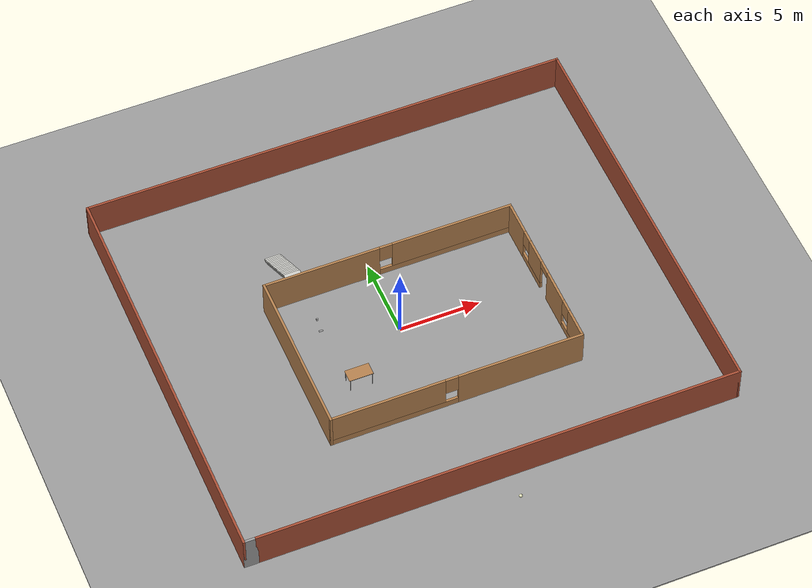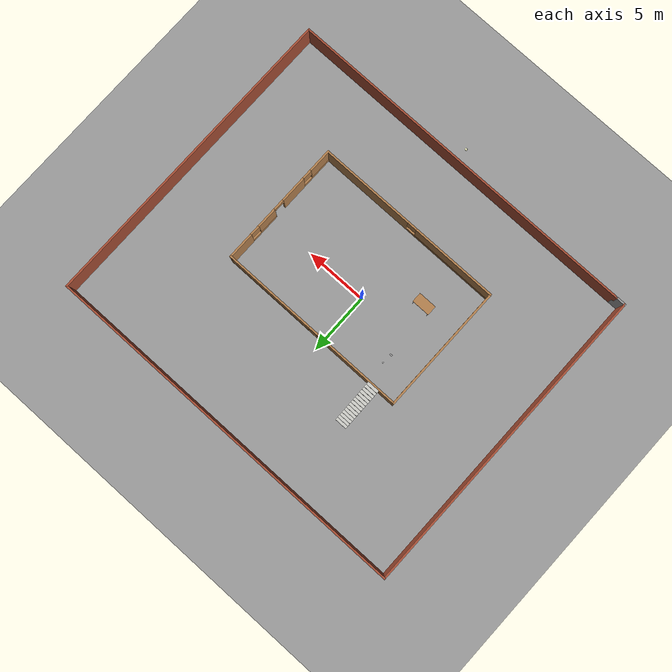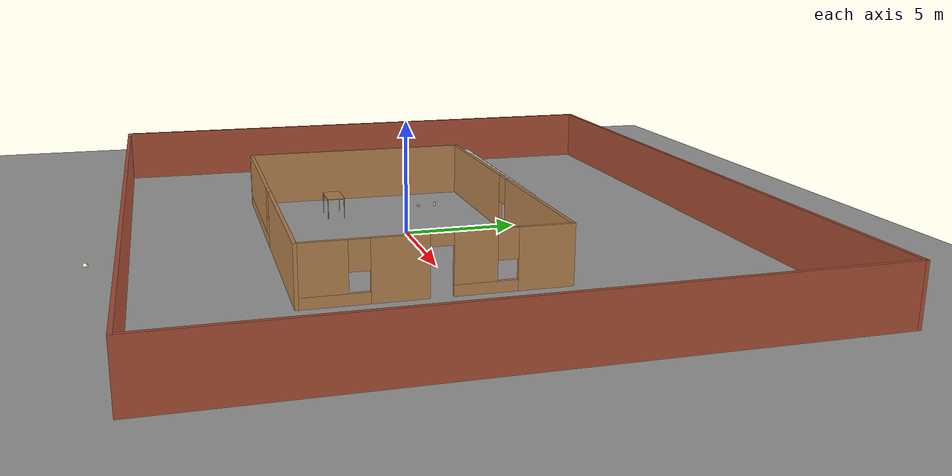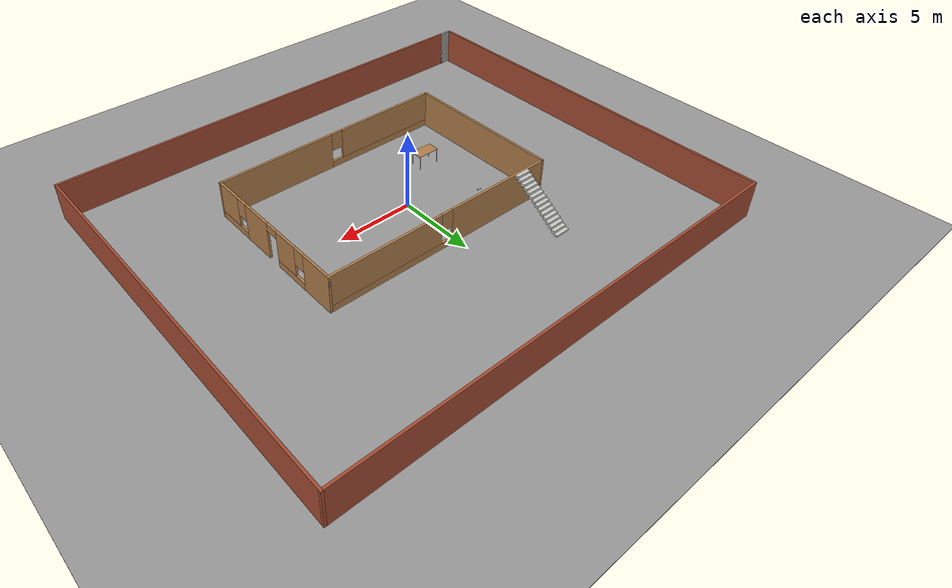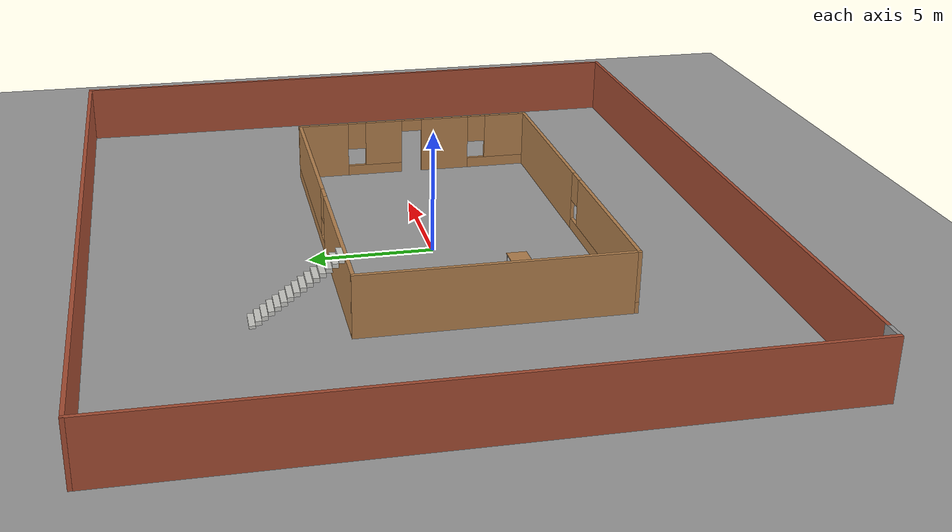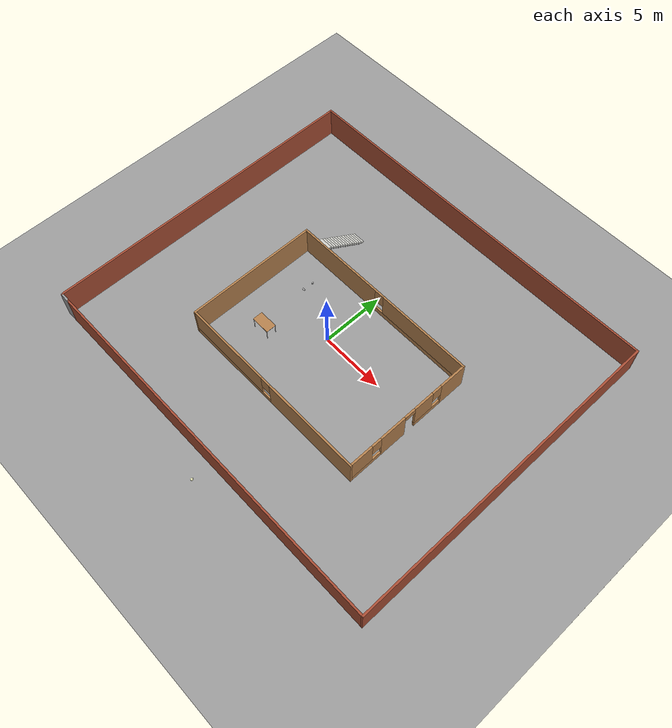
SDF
<sdf version="1.6">
 <world name="default">
  <light name="sun" type="directional">
   <pose>0 0 10 0 -0 0</pose>
   <diffuse>0.8 0.8 0.8 1</diffuse>
   <specular>0.2 0.2 0.2 1</specular>
   <attenuation>
    <range>1000</range>
    <constant>0.9</constant>
    <linear>0.01</linear>
    <quadratic>0.001</quadratic>
   </attenuation>
   <direction>-0.5 0.1 -0.9</direction>
   <spot><inner_angle>0</inner_angle><outer_angle>0</outer_angle><falloff>0</falloff></spot>
  </light>
  <model name="ground_plane">
   <static>1</static>
   <link name="link">
    <collision name="collision">
     <geometry><plane><normal>0 0 1</normal><size>100 100</size></plane></geometry>
     <surface>
      <contact><collide_bitmask>65535</collide_bitmask></contact>
      <friction><ode><mu>100</mu><mu2>50</mu2></ode></friction>
     </surface>
    </collision>
    <visual name="visual">
     <cast_shadows>0</cast_shadows>
     <geometry><plane><normal>0 0 1</normal><size>100 100</size></plane></geometry>
     <material>
      <script><uri>file://media/materials/scripts/gazebo.material</uri><name>Gazebo/Grey</name></script>
     </material>
    </visual>
   </link>
  </model>
  <gravity>0 0 -9.8</gravity>
  <magnetic_field>6e-06 2.3e-05 -4.2e-05</magnetic_field>
  <atmosphere type="adiabatic"/>
  <physics name="default_physics" default="0" type="ode">
   <max_step_size>0.001</max_step_size>
   <real_time_factor>1</real_time_factor>
   <real_time_update_rate>1000</real_time_update_rate>
  </physics>
  <scene><ambient>0.4 0.4 0.4 1</ambient><background>0.7 0.7 0.7 1</background><shadows>1</shadows></scene>
  <spherical_coordinates>
   <surface_model>EARTH_WGS84</surface_model>
   <latitude_deg>0</latitude_deg>
   <longitude_deg>0</longitude_deg>
   <elevation>0</elevation>
   <heading_deg>0</heading_deg>
  </spherical_coordinates>
  <model name="world">
   <pose>0.846493 0.830095 0 0 -0 0</pose>
   <link name="Stairs_1">
    <visual name="Stairs_1_Visual_0">
     <pose>-5.80593 6.84533 0.083333 0 -0 0</pose>
     <geometry><box><size>1 0.233333 0.166667</size></box></geometry>
     <material>
      <script><uri>file://media/materials/scripts/gazebo.material</uri><name>Gazebo/CeilingTiled</name></script>
      <ambient>1 1 1 1</ambient>
     </material>
     <meta><layer>0</layer></meta>
    </visual>
    <collision name="Stairs_1_Collision_0">
     <geometry><box><size>1 0.233333 0.166667</size></box></geometry>
     <pose>-5.80593 6.84533 0.083333 0 -0 0</pose>
    </collision>
    <visual name="Stairs_1_Visual_1">
     <pose>-5.80593 6.612 0.25 0 -0 0</pose>
     <geometry><box><size>1 0.233333 0.166667</size></box></geometry>
     <material>
      <script><uri>file://media/materials/scripts/gazebo.material</uri><name>Gazebo/CeilingTiled</name></script>
      <ambient>1 1 1 1</ambient>
     </material>
     <meta><layer>0</layer></meta>
    </visual>
    <collision name="Stairs_1_Collision_1">
     <geometry><box><size>1 0.233333 0.166667</size></box></geometry>
     <pose>-5.80593 6.612 0.25 0 -0 0</pose>
    </collision>
    <visual name="Stairs_1_Visual_2">
     <pose>-5.80593 6.37866 0.416667 0 -0 0</pose>
     <geometry><box><size>1 0.233333 0.166667</size></box></geometry>
     <material>
      <script><uri>file://media/materials/scripts/gazebo.material</uri><name>Gazebo/CeilingTiled</name></script>
      <ambient>1 1 1 1</ambient>
     </material>
     <meta><layer>0</layer></meta>
    </visual>
    <collision name="Stairs_1_Collision_2">
     <geometry><box><size>1 0.233333 0.166667</size></box></geometry>
     <pose>-5.80593 6.37866 0.416667 0 -0 0</pose>
    </collision>
    <visual name="Stairs_1_Visual_3">
     <pose>-5.80593 6.14533 0.583333 0 -0 0</pose>
     <geometry><box><size>1 0.233333 0.166667</size></box></geometry>
     <material>
      <script><uri>file://media/materials/scripts/gazebo.material</uri><name>Gazebo/CeilingTiled</name></script>
      <ambient>1 1 1 1</ambient>
     </material>
     <meta><layer>0</layer></meta>
    </visual>
    <collision name="Stairs_1_Collision_3">
     <geometry><box><size>1 0.233333 0.166667</size></box></geometry>
     <pose>-5.80593 6.14533 0.583333 0 -0 0</pose>
    </collision>
    <visual name="Stairs_1_Visual_4">
     <pose>-5.80593 5.912 0.75 0 -0 0</pose>
     <geometry><box><size>1 0.233333 0.166667</size></box></geometry>
     <material>
      <script><uri>file://media/materials/scripts/gazebo.material</uri><name>Gazebo/CeilingTiled</name></script>
      <ambient>1 1 1 1</ambient>
     </material>
     <meta><layer>0</layer></meta>
    </visual>
    <collision name="Stairs_1_Collision_4">
     <geometry><box><size>1 0.233333 0.166667</size></box></geometry>
     <pose>-5.80593 5.912 0.75 0 -0 0</pose>
    </collision>
    <visual name="Stairs_1_Visual_5">
     <pose>-5.80593 5.67866 0.916667 0 -0 0</pose>
     <geometry><box><size>1 0.233333 0.166667</size></box></geometry>
     <material>
      <script><uri>file://media/materials/scripts/gazebo.material</uri><name>Gazebo/CeilingTiled</name></script>
      <ambient>1 1 1 1</ambient>
     </material>
     <meta><layer>0</layer></meta>
    </visual>
    <collision name="Stairs_1_Collision_5">
     <geometry><box><size>1 0.233333 0.166667</size></box></geometry>
     <pose>-5.80593 5.67866 0.916667 0 -0 0</pose>
    </collision>
    <visual name="Stairs_1_Visual_6">
     <pose>-5.80593 5.44533 1.08333 0 -0 0</pose>
     <geometry><box><size>1 0.233333 0.166667</size></box></geometry>
     <material>
      <script><uri>file://media/materials/scripts/gazebo.material</uri><name>Gazebo/CeilingTiled</name></script>
      <ambient>1 1 1 1</ambient>
     </material>
     <meta><layer>0</layer></meta>
    </visual>
    <collision name="Stairs_1_Collision_6">
     <geometry><box><size>1 0.233333 0.166667</size></box></geometry>
     <pose>-5.80593 5.44533 1.08333 0 -0 0</pose>
    </collision>
    <visual name="Stairs_1_Visual_7">
     <pose>-5.80593 5.212 1.25 0 -0 0</pose>
     <geometry><box><size>1 0.233333 0.166667</size></box></geometry>
     <material>
      <script><uri>file://media/materials/scripts/gazebo.material</uri><name>Gazebo/CeilingTiled</name></script>
      <ambient>1 1 1 1</ambient>
     </material>
     <meta><layer>0</layer></meta>
    </visual>
    <collision name="Stairs_1_Collision_7">
     <geometry><box><size>1 0.233333 0.166667</size></box></geometry>
     <pose>-5.80593 5.212 1.25 0 -0 0</pose>
    </collision>
    <visual name="Stairs_1_Visual_8">
     <pose>-5.80593 4.97866 1.41667 0 -0 0</pose>
     <geometry><box><size>1 0.233333 0.166667</size></box></geometry>
     <material>
      <script><uri>file://media/materials/scripts/gazebo.material</uri><name>Gazebo/CeilingTiled</name></script>
      <ambient>1 1 1 1</ambient>
     </material>
     <meta><layer>0</layer></meta>
    </visual>
    <collision name="Stairs_1_Collision_8">
     <geometry><box><size>1 0.233333 0.166667</size></box></geometry>
     <pose>-5.80593 4.97866 1.41667 0 -0 0</pose>
    </collision>
    <visual name="Stairs_1_Visual_9">
     <pose>-5.80593 4.74533 1.58333 0 -0 0</pose>
     <geometry><box><size>1 0.233333 0.166667</size></box></geometry>
     <material>
      <script><uri>file://media/materials/scripts/gazebo.material</uri><name>Gazebo/CeilingTiled</name></script>
      <ambient>1 1 1 1</ambient>
     </material>
     <meta><layer>0</layer></meta>
    </visual>
    <collision name="Stairs_1_Collision_9">
     <geometry><box><size>1 0.233333 0.166667</size></box></geometry>
     <pose>-5.80593 4.74533 1.58333 0 -0 0</pose>
    </collision>
    <visual name="Stairs_1_Visual_10">
     <pose>-5.80593 4.512 1.75 0 -0 0</pose>
     <geometry><box><size>1 0.233333 0.166667</size></box></geometry>
     <material>
      <script><uri>file://media/materials/scripts/gazebo.material</uri><name>Gazebo/CeilingTiled</name></script>
      <ambient>1 1 1 1</ambient>
     </material>
     <meta><layer>0</layer></meta>
    </visual>
    <collision name="Stairs_1_Collision_10">
     <geometry><box><size>1 0.233333 0.166667</size></box></geometry>
     <pose>-5.80593 4.512 1.75 0 -0 0</pose>
    </collision>
    <visual name="Stairs_1_Visual_11">
     <pose>-5.80593 4.27866 1.91667 0 -0 0</pose>
     <geometry><box><size>1 0.233333 0.166667</size></box></geometry>
     <material>
      <script><uri>file://media/materials/scripts/gazebo.material</uri><name>Gazebo/CeilingTiled</name></script>
      <ambient>1 1 1 1</ambient>
     </material>
     <meta><layer>0</layer></meta>
    </visual>
    <collision name="Stairs_1_Collision_11">
     <geometry><box><size>1 0.233333 0.166667</size></box></geometry>
     <pose>-5.80593 4.27866 1.91667 0 -0 0</pose>
    </collision>
    <visual name="Stairs_1_Visual_12">
     <pose>-5.80593 4.04533 2.08333 0 -0 0</pose>
     <geometry><box><size>1 0.233333 0.166667</size></box></geometry>
     <material>
      <script><uri>file://media/materials/scripts/gazebo.material</uri><name>Gazebo/CeilingTiled</name></script>
      <ambient>1 1 1 1</ambient>
     </material>
     <meta><layer>0</layer></meta>
    </visual>
    <collision name="Stairs_1_Collision_12">
     <geometry><box><size>1 0.233333 0.166667</size></box></geometry>
     <pose>-5.80593 4.04533 2.08333 0 -0 0</pose>
    </collision>
    <visual name="Stairs_1_Visual_13">
     <pose>-5.80593 3.812 2.25 0 -0 0</pose>
     <geometry><box><size>1 0.233333 0.166667</size></box></geometry>
     <material>
      <script><uri>file://media/materials/scripts/gazebo.material</uri><name>Gazebo/CeilingTiled</name></script>
      <ambient>1 1 1 1</ambient>
     </material>
     <meta><layer>0</layer></meta>
    </visual>
    <collision name="Stairs_1_Collision_13">
     <geometry><box><size>1 0.233333 0.166667</size></box></geometry>
     <pose>-5.80593 3.812 2.25 0 -0 0</pose>
    </collision>
    <visual name="Stairs_1_Visual_14">
     <pose>-5.80593 3.57866 2.41667 0 -0 0</pose>
     <geometry><box><size>1 0.233333 0.166667</size></box></geometry>
     <material>
      <script><uri>file://media/materials/scripts/gazebo.material</uri><name>Gazebo/CeilingTiled</name></script>
      <ambient>1 1 1 1</ambient>
     </material>
     <meta><layer>0</layer></meta>
    </visual>
    <collision name="Stairs_1_Collision_14">
     <geometry><box><size>1 0.233333 0.166667</size></box></geometry>
     <pose>-5.80593 3.57866 2.41667 0 -0 0</pose>
    </collision>
   </link>
   <link name="Wall_0">
    <collision name="Wall_0_Collision">
     <geometry><box><size>29.75 0.15 2.5</size></box></geometry>
     <pose>0 0 1.25 0 -0 0</pose>
    </collision>
    <visual name="Wall_0_Visual">
     <pose>0 0 1.25 0 -0 0</pose>
     <geometry><box><size>29.75 0.15 2.5</size></box></geometry>
     <material>
      <script><uri>file://media/materials/scripts/gazebo.material</uri><name>Gazebo/Bricks</name></script>
      <ambient>1 1 1 1</ambient>
     </material>
     <meta><layer>0</layer></meta>
    </visual>
    <pose>0.375 -12.8 0 0 -0 0</pose>
   </link>
   <link name="Wall_1">
    <collision name="Wall_1_Collision">
     <geometry><box><size>25.75 0.15 2.5</size></box></geometry>
     <pose>0 0 1.25 0 -0 0</pose>
    </collision>
    <visual name="Wall_1_Visual">
     <pose>0 0 1.25 0 -0 0</pose>
     <geometry><box><size>25.75 0.15 2.5</size></box></geometry>
     <material>
      <script><uri>file://media/materials/scripts/gazebo.material</uri><name>Gazebo/Bricks</name></script>
      <ambient>1 1 1 1</ambient>
     </material>
     <meta><layer>0</layer></meta>
    </visual>
    <pose>15.175 0 0 0 -0 1.5708</pose>
   </link>
   <link name="Wall_2">
    <collision name="Wall_2_Collision">
     <geometry><box><size>30.5 0.15 2.5</size></box></geometry>
     <pose>0 0 1.25 0 -0 0</pose>
    </collision>
    <visual name="Wall_2_Visual">
     <pose>0 0 1.25 0 -0 0</pose>
     <geometry><box><size>30.5 0.15 2.5</size></box></geometry>
     <material>
      <script><uri>file://media/materials/scripts/gazebo.material</uri><name>Gazebo/Bricks</name></script>
      <ambient>1 1 1 1</ambient>
     </material>
     <meta><layer>0</layer></meta>
    </visual>
    <pose>-0 12.8 0 0 -0 3.14159</pose>
   </link>
   <link name="Wall_3">
    <collision name="Wall_3_Collision">
     <geometry><box><size>25.75 0.15 2.5</size></box></geometry>
     <pose>0 0 1.25 0 -0 0</pose>
    </collision>
    <visual name="Wall_3_Visual">
     <pose>0 0 1.25 0 -0 0</pose>
     <geometry><box><size>25.75 0.15 2.5</size></box></geometry>
     <material>
      <script><uri>file://media/materials/scripts/gazebo.material</uri><name>Gazebo/Bricks</name></script>
      <ambient>1 1 1 1</ambient>
     </material>
     <meta><layer>0</layer></meta>
    </visual>
    <pose>-15.175 0 0 0 -0 -1.5708</pose>
   </link>
   <link name="Wall_4">
    <collision name="Wall_4_Collision">
     <geometry><box><size>0.9 0.15 2.5</size></box></geometry>
     <pose>0 0 1.25 0 -0 0</pose>
    </collision>
    <visual name="Wall_4_Visual">
     <pose>0 0 1.25 0 -0 0</pose>
     <geometry><box><size>0.9 0.15 2.5</size></box></geometry>
     <material>
      <script><uri>file://media/materials/scripts/gazebo.material</uri><name>Gazebo/Grey</name></script>
      <ambient>1 1 1 1</ambient>
     </material>
     <meta><layer>0</layer></meta>
    </visual>
    <pose>-14.8 -12.8 0 0 -0 0</pose>
   </link>
   <link name="Wall_40">
    <pose>0.159381 3.40601 0 0 -0 0</pose>
    <visual name="Wall_40_Visual_0">
     <pose>-4.21798 0 1.25 0 -0 0</pose>
     <geometry><box><size>7.31404 0.15 2.5</size></box></geometry>
     <material>
      <script><uri>file://media/materials/scripts/gazebo.material</uri><name>Gazebo/Wood</name></script>
      <ambient>1 1 1 1</ambient>
     </material>
     <meta><layer>0</layer></meta>
    </visual>
    <collision name="Wall_40_Collision_0">
     <geometry><box><size>7.31404 0.15 2.5</size></box></geometry>
     <pose>-4.21798 0 1.25 0 -0 0</pose>
    </collision>
    <visual name="Wall_40_Visual_1">
     <pose>3.65702 0 0.25 0 -0 0</pose>
     <geometry><box><size>8.43596 0.15 0.5</size></box></geometry>
     <material>
      <script><uri>file://media/materials/scripts/gazebo.material</uri><name>Gazebo/Wood</name></script>
      <ambient>1 1 1 1</ambient>
     </material>
     <meta><layer>0</layer></meta>
    </visual>
    <collision name="Wall_40_Collision_1">
     <geometry><box><size>8.43596 0.15 0.5</size></box></geometry>
     <pose>3.65702 0 0.25 0 -0 0</pose>
    </collision>
    <visual name="Wall_40_Visual_2">
     <pose>4.05702 0 1.5 0 -0 0</pose>
     <geometry><box><size>7.63596 0.15 2</size></box></geometry>
     <material>
      <script><uri>file://media/materials/scripts/gazebo.material</uri><name>Gazebo/Wood</name></script>
      <ambient>1 1 1 1</ambient>
     </material>
     <meta><layer>0</layer></meta>
    </visual>
    <collision name="Wall_40_Collision_2">
     <geometry><box><size>7.63596 0.15 2</size></box></geometry>
     <pose>4.05702 0 1.5 0 -0 0</pose>
    </collision>
    <visual name="Wall_40_Visual_3">
     <pose>-0.160962 0 1.9 0 -0 0</pose>
     <geometry><box><size>0.8 0.15 1.2</size></box></geometry>
     <material>
      <script><uri>file://media/materials/scripts/gazebo.material</uri><name>Gazebo/Wood</name></script>
      <ambient>1 1 1 1</ambient>
     </material>
     <meta><layer>0</layer></meta>
    </visual>
    <collision name="Wall_40_Collision_3">
     <geometry><box><size>0.8 0.15 1.2</size></box></geometry>
     <pose>-0.160962 0 1.9 0 -0 0</pose>
    </collision>
   </link>
   <link name="Wall_42">
    <pose>7.95938 -1.76899 0 0 -0 -1.5708</pose>
    <visual name="Wall_42_Visual_0">
     <pose>-4.14193 0 1.25 0 -0 0</pose>
     <geometry><box><size>2.21614 0.15 2.5</size></box></geometry>
     <material>
      <script><uri>file://media/materials/scripts/gazebo.material</uri><name>Gazebo/Wood</name></script>
      <ambient>1 1 1 1</ambient>
     </material>
     <meta><layer>0</layer></meta>
    </visual>
    <collision name="Wall_42_Collision_0">
     <geometry><box><size>2.21614 0.15 2.5</size></box></geometry>
     <pose>-4.14193 0 1.25 0 -0 0</pose>
    </collision>
    <visual name="Wall_42_Visual_1">
     <pose>1.41827 0 1.25 0 -0 0</pose>
     <geometry><box><size>2.17035 0.15 2.5</size></box></geometry>
     <material>
      <script><uri>file://media/materials/scripts/gazebo.material</uri><name>Gazebo/Wood</name></script>
      <ambient>1 1 1 1</ambient>
     </material>
     <meta><layer>0</layer></meta>
    </visual>
    <collision name="Wall_42_Collision_1">
     <geometry><box><size>2.17035 0.15 2.5</size></box></geometry>
     <pose>1.41827 0 1.25 0 -0 0</pose>
    </collision>
    <visual name="Wall_42_Visual_2">
     <pose>-1.80038 0 0.25 0 -0 0</pose>
     <geometry><box><size>2.46696 0.15 0.5</size></box></geometry>
     <material>
      <script><uri>file://media/materials/scripts/gazebo.material</uri><name>Gazebo/Wood</name></script>
      <ambient>1 1 1 1</ambient>
     </material>
     <meta><layer>0</layer></meta>
    </visual>
    <collision name="Wall_42_Collision_2">
     <geometry><box><size>2.46696 0.15 0.5</size></box></geometry>
     <pose>-1.80038 0 0.25 0 -0 0</pose>
    </collision>
    <visual name="Wall_42_Visual_3">
     <pose>3.87672 0 0.25 0 -0 0</pose>
     <geometry><box><size>2.74656 0.15 0.5</size></box></geometry>
     <material>
      <script><uri>file://media/materials/scripts/gazebo.material</uri><name>Gazebo/Wood</name></script>
      <ambient>1 1 1 1</ambient>
     </material>
     <meta><layer>0</layer></meta>
    </visual>
    <collision name="Wall_42_Collision_3">
     <geometry><box><size>2.74656 0.15 0.5</size></box></geometry>
     <pose>3.87672 0 0.25 0 -0 0</pose>
    </collision>
    <visual name="Wall_42_Visual_4">
     <pose>-1.40038 0 1.5 0 -0 0</pose>
     <geometry><box><size>1.66696 0.15 2</size></box></geometry>
     <material>
      <script><uri>file://media/materials/scripts/gazebo.material</uri><name>Gazebo/Wood</name></script>
      <ambient>1 1 1 1</ambient>
     </material>
     <meta><layer>0</layer></meta>
    </visual>
    <collision name="Wall_42_Collision_4">
     <geometry><box><size>1.66696 0.15 2</size></box></geometry>
     <pose>-1.40038 0 1.5 0 -0 0</pose>
    </collision>
    <visual name="Wall_42_Visual_5">
     <pose>-1.40038 0 1.5 0 -0 0</pose>
     <geometry><box><size>1.66696 0.15 2</size></box></geometry>
     <material>
      <script><uri>file://media/materials/scripts/gazebo.material</uri><name>Gazebo/Wood</name></script>
      <ambient>1 1 1 1</ambient>
     </material>
     <meta><layer>0</layer></meta>
    </visual>
    <collision name="Wall_42_Collision_5">
     <geometry><box><size>1.66696 0.15 2</size></box></geometry>
     <pose>-1.40038 0 1.5 0 -0 0</pose>
    </collision>
    <visual name="Wall_42_Visual_6">
     <pose>4.27672 0 1.5 0 -0 0</pose>
     <geometry><box><size>1.94656 0.15 2</size></box></geometry>
     <material>
      <script><uri>file://media/materials/scripts/gazebo.material</uri><name>Gazebo/Wood</name></script>
      <ambient>1 1 1 1</ambient>
     </material>
     <meta><layer>0</layer></meta>
    </visual>
    <collision name="Wall_42_Collision_6">
     <geometry><box><size>1.94656 0.15 2</size></box></geometry>
     <pose>4.27672 0 1.5 0 -0 0</pose>
    </collision>
    <visual name="Wall_42_Visual_7">
     <pose>-2.63386 0 1.9 0 -0 0</pose>
     <geometry><box><size>0.8 0.15 1.2</size></box></geometry>
     <material>
      <script><uri>file://media/materials/scripts/gazebo.material</uri><name>Gazebo/Wood</name></script>
      <ambient>1 1 1 1</ambient>
     </material>
     <meta><layer>0</layer></meta>
    </visual>
    <collision name="Wall_42_Collision_7">
     <geometry><box><size>0.8 0.15 1.2</size></box></geometry>
     <pose>-2.63386 0 1.9 0 -0 0</pose>
    </collision>
    <visual name="Wall_42_Visual_8">
     <pose>2.90344 0 1.9 0 -0 0</pose>
     <geometry><box><size>0.8 0.15 1.2</size></box></geometry>
     <material>
      <script><uri>file://media/materials/scripts/gazebo.material</uri><name>Gazebo/Wood</name></script>
      <ambient>1 1 1 1</ambient>
     </material>
     <meta><layer>0</layer></meta>
    </visual>
    <collision name="Wall_42_Collision_8">
     <geometry><box><size>0.8 0.15 1.2</size></box></geometry>
     <pose>2.90344 0 1.9 0 -0 0</pose>
    </collision>
    <visual name="Wall_42_Visual_9">
     <pose>-0.116906 0 2.25 0 -0 0</pose>
     <geometry><box><size>0.9 0.15 0.5</size></box></geometry>
     <material>
      <script><uri>file://media/materials/scripts/gazebo.material</uri><name>Gazebo/Wood</name></script>
      <ambient>1 1 1 1</ambient>
     </material>
     <meta><layer>0</layer></meta>
    </visual>
    <collision name="Wall_42_Collision_9">
     <geometry><box><size>0.9 0.15 0.5</size></box></geometry>
     <pose>-0.116906 0 2.25 0 -0 0</pose>
    </collision>
    <visual name="Wall_42_Visual_10">
     <pose>-0.116906 0 2.25 0 -0 0</pose>
     <geometry><box><size>0.9 0.15 0.5</size></box></geometry>
     <material>
      <script><uri>file://media/materials/scripts/gazebo.material</uri><name>Gazebo/Wood</name></script>
      <ambient>1 1 1 1</ambient>
     </material>
     <meta><layer>0</layer></meta>
    </visual>
    <collision name="Wall_42_Collision_10">
     <geometry><box><size>0.9 0.15 0.5</size></box></geometry>
     <pose>-0.116906 0 2.25 0 -0 0</pose>
    </collision>
   </link>
   <link name="Wall_43">
    <pose>0.159381 -6.94399 0 0 -0 3.14159</pose>
    <visual name="Wall_43_Visual_0">
     <pose>-3.95919 0 1.25 0 -0 0</pose>
     <geometry><box><size>7.83162 0.15 2.5</size></box></geometry>
     <material>
      <script><uri>file://media/materials/scripts/gazebo.material</uri><name>Gazebo/Wood</name></script>
      <ambient>1 1 1 1</ambient>
     </material>
     <meta><layer>0</layer></meta>
    </visual>
    <collision name="Wall_43_Collision_0">
     <geometry><box><size>7.83162 0.15 2.5</size></box></geometry>
     <pose>-3.95919 0 1.25 0 -0 0</pose>
    </collision>
    <visual name="Wall_43_Visual_1">
     <pose>3.91581 0 0.25 0 -0 0</pose>
     <geometry><box><size>7.91838 0.15 0.5</size></box></geometry>
     <material>
      <script><uri>file://media/materials/scripts/gazebo.material</uri><name>Gazebo/Wood</name></script>
      <ambient>1 1 1 1</ambient>
     </material>
     <meta><layer>0</layer></meta>
    </visual>
    <collision name="Wall_43_Collision_1">
     <geometry><box><size>7.91838 0.15 0.5</size></box></geometry>
     <pose>3.91581 0 0.25 0 -0 0</pose>
    </collision>
    <visual name="Wall_43_Visual_2">
     <pose>4.31581 0 1.5 0 -0 0</pose>
     <geometry><box><size>7.11838 0.15 2</size></box></geometry>
     <material>
      <script><uri>file://media/materials/scripts/gazebo.material</uri><name>Gazebo/Wood</name></script>
      <ambient>1 1 1 1</ambient>
     </material>
     <meta><layer>0</layer></meta>
    </visual>
    <collision name="Wall_43_Collision_2">
     <geometry><box><size>7.11838 0.15 2</size></box></geometry>
     <pose>4.31581 0 1.5 0 -0 0</pose>
    </collision>
    <visual name="Wall_43_Visual_3">
     <pose>0.356615 0 1.9 0 -0 0</pose>
     <geometry><box><size>0.8 0.15 1.2</size></box></geometry>
     <material>
      <script><uri>file://media/materials/scripts/gazebo.material</uri><name>Gazebo/Wood</name></script>
      <ambient>1 1 1 1</ambient>
     </material>
     <meta><layer>0</layer></meta>
    </visual>
    <collision name="Wall_43_Collision_3">
     <geometry><box><size>0.8 0.15 1.2</size></box></geometry>
     <pose>0.356615 0 1.9 0 -0 0</pose>
    </collision>
   </link>
   <link name="Wall_45">
    <collision name="Wall_45_Collision">
     <geometry><box><size>10.5 0.15 2.5</size></box></geometry>
     <pose>0 0 1.25 0 -0 0</pose>
    </collision>
    <visual name="Wall_45_Visual">
     <pose>0 0 1.25 0 -0 0</pose>
     <geometry><box><size>10.5 0.15 2.5</size></box></geometry>
     <material>
      <script><uri>file://media/materials/scripts/gazebo.material</uri><name>Gazebo/Wood</name></script>
      <ambient>1 1 1 1</ambient>
     </material>
     <meta><layer>0</layer></meta>
    </visual>
    <pose>-7.64062 -1.76899 0 0 -0 1.5708</pose>
   </link>
   <static>1</static>
  </model>
  <model name="ground_plane_0">
   <static>1</static>
   <link name="link">
    <collision name="collision">
     <geometry><plane><normal>0 0 1</normal><size>100 100</size></plane></geometry>
     <surface>
      <contact><collide_bitmask>65535</collide_bitmask></contact>
      <friction><ode><mu>100</mu><mu2>50</mu2></ode></friction>
     </surface>
    </collision>
    <visual name="visual">
     <cast_shadows>0</cast_shadows>
     <geometry><plane><normal>0 0 1</normal><size>100 100</size></plane></geometry>
     <material>
      <script><uri>file://media/materials/scripts/gazebo.material</uri><name>Gazebo/Grey</name></script>
     </material>
    </visual>
   </link>
   <pose>-12.2675 -8.88058 0 0 -0 0</pose>
  </model>
  <model name="white_ball">
   <link name="link_0">
    <inertial>
     <mass>1</mass>
     <inertia><ixx>0.1</ixx><ixy>0</ixy><ixz>0</ixz><iyy>0.1</iyy><iyz>0</iyz><izz>0.1</izz></inertia>
    </inertial>
    <visual name="visual">
     <geometry><sphere><radius>0.1</radius></sphere></geometry>
     <material>
      <lighting>1</lighting>
      <script><uri>file://media/materials/scripts/gazebo.material</uri><name>Gazebo/Grey</name></script>
      <shader type="pixel"><normal_map>__default__</normal_map></shader>
      <ambient>1 1 1 1</ambient>
      <diffuse>1 1 0.8 1</diffuse>
      <specular>1 1 1 1</specular>
      <emissive>1 1 1 1</emissive>
     </material>
    </visual>
    <collision name="collision">
     <geometry><sphere><radius>0.1</radius></sphere></geometry>
     <surface>
      <friction>
       <ode><mu>1</mu><mu2>1</mu2><fdir1>0 0 0</fdir1><slip1>0</slip1><slip2>0</slip2></ode>
       <torsional>
        <coefficient>1</coefficient>
        <patch_radius>0</patch_radius>
        <surface_radius>0</surface_radius>
        <use_patch_radius>1</use_patch_radius>
        <ode><slip>0</slip></ode>
       </torsional>
      </friction>
      <bounce><restitution_coefficient>0</restitution_coefficient><threshold>1e+06</threshold></bounce>
      <contact>
       <collide_without_contact>0</collide_without_contact>
       <collide_without_contact_bitmask>1</collide_without_contact_bitmask>
       <collide_bitmask>1</collide_bitmask>
       <ode>
        <soft_cfm>0</soft_cfm>
        <soft_erp>0.2</soft_erp>
        <kp>1e+13</kp>
        <kd>1</kd>
        <max_vel>0.01</max_vel>
        <min_depth>0</min_depth>
       </ode>
       <bullet>
        <split_impulse>1</split_impulse>
        <split_impulse_penetration_threshold>-0.01</split_impulse_penetration_threshold>
        <soft_cfm>0</soft_cfm>
        <soft_erp>0.2</soft_erp>
        <kp>1e+13</kp>
        <kd>1</kd>
       </bullet>
      </contact>
     </surface>
    </collision>
   </link>
   <static>0</static>
   <pose>1.73404 -13.5587 0.099995 0 -0 0</pose>
  </model>
  <model name="beer">
   <link name="link">
    <pose>0 0 0.115 0 -0 0</pose>
    <inertial>
     <mass>0.39</mass>
     <inertia><ixx>0.00058</ixx><ixy>0</ixy><ixz>0</ixz><iyy>0.00058</iyy><iyz>0</iyz><izz>0.00019</izz></inertia>
    </inertial>
    <collision name="collision">
     <geometry><cylinder><radius>0.055</radius><length>0.23</length></cylinder></geometry>
    </collision>
    <visual name="visual">
     <geometry><cylinder><radius>0.055</radius><length>0.23</length></cylinder></geometry>
     <material>
      <script>
       <uri>model://beer/materials/scripts</uri>
       <uri>model://beer/materials/textures</uri>
       <name>Beer/Diffuse</name>
      </script>
     </material>
    </visual>
   </link>
   <pose>-4.25905 2.43177 -1e-05 -1e-06 -0 1.4e-05</pose>
  </model>
  <model name="beer_0">
   <link name="link">
    <pose>0 0 0.115 0 -0 0</pose>
    <inertial>
     <mass>0.39</mass>
     <inertia><ixx>0.00058</ixx><ixy>0</ixy><ixz>0</ixz><iyy>0.00058</iyy><iyz>0</iyz><izz>0.00019</izz></inertia>
    </inertial>
    <collision name="collision">
     <geometry><cylinder><radius>0.055</radius><length>0.23</length></cylinder></geometry>
    </collision>
    <visual name="visual">
     <geometry><cylinder><radius>0.055</radius><length>0.23</length></cylinder></geometry>
     <material>
      <script>
       <uri>model://beer/materials/scripts</uri>
       <uri>model://beer/materials/textures</uri>
       <name>Beer/Diffuse</name>
      </script>
     </material>
    </visual>
   </link>
   <pose>-4.44834 1.62618 0.055 -1.57081 1.57079 -1.57081</pose>
  </model>
  <model name="table">
   <static>1</static>
   <link name="link">
    <collision name="surface">
     <pose>0 0 1 0 -0 0</pose>
     <geometry><box><size>1.5 0.8 0.03</size></box></geometry>
     <surface><friction><ode><mu>0.6</mu><mu2>0.6</mu2></ode></friction></surface>
    </collision>
    <visual name="visual1">
     <pose>0 0 1 0 -0 0</pose>
     <geometry><box><size>1.5 0.8 0.03</size></box></geometry>
     <material>
      <script><uri>file://media/materials/scripts/gazebo.material</uri><name>Gazebo/Wood</name></script>
     </material>
    </visual>
    <collision name="front_left_leg">
     <pose>0.68 0.38 0.5 0 -0 0</pose>
     <geometry><cylinder><radius>0.02</radius><length>1</length></cylinder></geometry>
    </collision>
    <visual name="front_left_leg">
     <pose>0.68 0.38 0.5 0 -0 0</pose>
     <geometry><cylinder><radius>0.02</radius><length>1</length></cylinder></geometry>
     <material>
      <script><uri>file://media/materials/scripts/gazebo.material</uri><name>Gazebo/Grey</name></script>
     </material>
    </visual>
    <collision name="front_right_leg">
     <pose>0.68 -0.38 0.5 0 -0 0</pose>
     <geometry><cylinder><radius>0.02</radius><length>1</length></cylinder></geometry>
    </collision>
    <visual name="front_right_leg">
     <pose>0.68 -0.38 0.5 0 -0 0</pose>
     <geometry><cylinder><radius>0.02</radius><length>1</length></cylinder></geometry>
     <material>
      <script><uri>file://media/materials/scripts/gazebo.material</uri><name>Gazebo/Grey</name></script>
     </material>
    </visual>
    <collision name="back_right_leg">
     <pose>-0.68 -0.38 0.5 0 -0 0</pose>
     <geometry><cylinder><radius>0.02</radius><length>1</length></cylinder></geometry>
    </collision>
    <visual name="back_right_leg">
     <pose>-0.68 -0.38 0.5 0 -0 0</pose>
     <geometry><cylinder><radius>0.02</radius><length>1</length></cylinder></geometry>
     <material>
      <script><uri>file://media/materials/scripts/gazebo.material</uri><name>Gazebo/Grey</name></script>
     </material>
    </visual>
    <collision name="back_left_leg">
     <pose>-0.68 0.38 0.5 0 -0 0</pose>
     <geometry><cylinder><radius>0.02</radius><length>1</length></cylinder></geometry>
    </collision>
    <visual name="back_left_leg">
     <pose>-0.68 0.38 0.5 0 -0 0</pose>
     <geometry><cylinder><radius>0.02</radius><length>1</length></cylinder></geometry>
     <material>
      <script><uri>file://media/materials/scripts/gazebo.material</uri><name>Gazebo/Grey</name></script>
     </material>
    </visual>
   </link>
   <pose>-3.66931 -2.65389 0 0 -0 0</pose>
  </model>
 </world>
</sdf>
